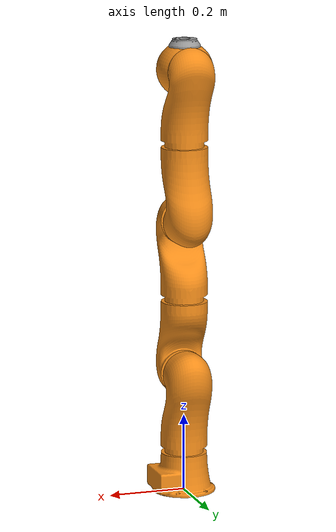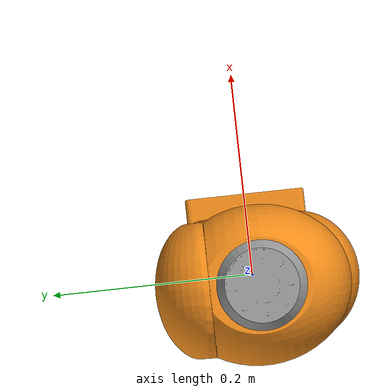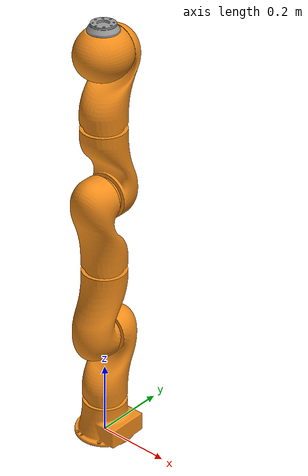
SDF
<sdf version='1.5'>
  <model name='lwr_robot'>
    <link name='lwr_base_link'>
      <pose>0 0 0 0 -0 0</pose>
      <inertial>
        <pose>0 0 0.055 0 -0 0</pose>
        <mass>2</mass>
        <inertia>
          <ixx>0.00381667</ixx>
          <ixy>0</ixy>
          <ixz>0</ixz>
          <iyy>0.0036</iyy>
          <iyz>0</iyz>
          <izz>0.00381667</izz>
        </inertia>
      </inertial>
      <collision name='lwr_base_link_collision'>
        <pose>0 0 0.055 0 -0 -3.14159</pose>
        <geometry>
          <cylinder>
            <length>0.11</length>
            <radius>0.07</radius>
          </cylinder>
        </geometry>
        <surface>
          <contact>
            <ode/>
          </contact>
          <friction>
            <ode/>
          </friction>
        </surface>
      </collision>
      <visual name='lwr_base_link_visual'>
        <pose>0 0 0 0 -0 -3.14159</pose>
        <geometry>
          <mesh>
            <scale>1 1 1</scale>
            <uri>model://lwr_description/meshes/base.STL</uri>
          </mesh>
        </geometry>
        <material>
          <script>
            <name>Gazebo/Orange</name>
            <uri>__default__</uri>
          </script>
        </material>
      </visual>
      <gravity>1</gravity>
      <velocity_decay/>
      <self_collide>0</self_collide>
      <gravity>1</gravity>
    </link>
    <joint name='world_lwr_base_joint' type='revolute'>
      <child>lwr_base_link</child>
      <parent>world</parent>
      <axis>
        <limit>
          <lower>0</lower>
          <upper>0</upper>
        </limit>
        <dynamics>
          <damping>0</damping>
          <friction>0</friction>
          <spring_reference>0</spring_reference>
          <spring_stiffness>0</spring_stiffness>
        </dynamics>
        <use_parent_model_frame>1</use_parent_model_frame>
        <xyz>0 0 1</xyz>
      </axis>
    </joint>
    <link name='lwr_1_link'>
      <pose>0 0 0.11 0 -0 0</pose>
      <inertial>
        <pose>0 -0.06 0.13 0 -0 0</pose>
        <mass>2</mass>
        <inertia>
          <ixx>0.0136667</ixx>
          <ixy>0</ixy>
          <ixz>0</ixz>
          <iyy>0.003</iyy>
          <iyz>0</iyz>
          <izz>0.0118667</izz>
        </inertia>
      </inertial>
      <collision name='lwr_1_link_collision'>
        <pose>0 0 0 0 -0 0</pose>
        <geometry>
          <sphere>
            <radius>0.07</radius>
          </sphere>
        </geometry>
        <surface>
          <contact>
            <ode/>
          </contact>
          <friction>
            <ode/>
          </friction>
        </surface>
      </collision>
      <collision name='lwr_1_link_collision_lwr_1_link_1'>
        <pose>0 0.06 0.2 0 -0 0</pose>
        <geometry>
          <sphere>
            <radius>0.07</radius>
          </sphere>
        </geometry>
        <surface>
          <contact>
            <ode/>
          </contact>
          <friction>
            <ode/>
          </friction>
        </surface>
      </collision>
      <collision name='lwr_1_link_collision_lwr_1_link_2'>
        <pose>0 0.03 0.1 -0.291 0 0</pose>
        <geometry>
          <cylinder>
            <length>0.208</length>
            <radius>0.07</radius>
          </cylinder>
        </geometry>
        <surface>
          <contact>
            <ode/>
          </contact>
          <friction>
            <ode/>
          </friction>
        </surface>
      </collision>
      <visual name='lwr_1_link_visual'>
        <pose>0 0 -0.008 0 -0 -3.14159</pose>
        <geometry>
          <mesh>
            <scale>1 1 1</scale>
            <uri>model://lwr_description/meshes/link_1.STL</uri>
          </mesh>
        </geometry>
        <material>
          <script>
            <name>Gazebo/Orange</name>
            <uri>__default__</uri>
          </script>
        </material>
      </visual>
      <gravity>1</gravity>
      <velocity_decay/>
      <self_collide>0</self_collide>
      <gravity>1</gravity>
    </link>
    <joint name='lwr_0_joint' type='revolute'>
      <child>lwr_1_link</child>
      <parent>lwr_base_link</parent>
      <axis>
        <xyz>0 0 1</xyz>
        <limit>
          <lower>-2.96706</lower>
          <upper>2.96706</upper>
          <effort>176</effort>
          <velocity>1.91986</velocity>
        </limit>
        <dynamics>
          <damping>1</damping>
          <friction>10</friction>
          <spring_reference>0</spring_reference>
          <spring_stiffness>0</spring_stiffness>
        </dynamics>
        <use_parent_model_frame>1</use_parent_model_frame>
      </axis>
    </joint>
    <link name='lwr_2_link'>
      <pose>0 0 0.3105 0 -0 0</pose>
      <inertial>
        <pose>0 0.06 0.07 0 -0 0</pose>
        <mass>2</mass>
        <inertia>
          <ixx>0.0136667</ixx>
          <ixy>0</ixy>
          <ixz>0</ixz>
          <iyy>0.003</iyy>
          <iyz>0</iyz>
          <izz>0.0118667</izz>
        </inertia>
      </inertial>
      <collision name='lwr_2_link_collision'>
        <pose>0 0 0.2 0 -0 0</pose>
        <geometry>
          <sphere>
            <radius>0.07</radius>
          </sphere>
        </geometry>
        <surface>
          <contact>
            <ode/>
          </contact>
          <friction>
            <ode/>
          </friction>
        </surface>
      </collision>
      <collision name='lwr_2_link_collision_lwr_2_link_1'>
        <pose>0 -0.06 0 0 -0 0</pose>
        <geometry>
          <sphere>
            <radius>0.07</radius>
          </sphere>
        </geometry>
        <surface>
          <contact>
            <ode/>
          </contact>
          <friction>
            <ode/>
          </friction>
        </surface>
      </collision>
      <collision name='lwr_2_link_collision_lwr_2_link_2'>
        <pose>0 -0.03 0.1 -0.291 0 0</pose>
        <geometry>
          <cylinder>
            <length>0.208</length>
            <radius>0.07</radius>
          </cylinder>
        </geometry>
        <surface>
          <contact>
            <ode/>
          </contact>
          <friction>
            <ode/>
          </friction>
        </surface>
      </collision>
      <visual name='lwr_2_link_visual'>
        <pose>0 0 0 0 -0 -3.14159</pose>
        <geometry>
          <mesh>
            <scale>1 1 1</scale>
            <uri>model://lwr_description/meshes/link_2.STL</uri>
          </mesh>
        </geometry>
        <material>
          <script>
            <name>Gazebo/Orange</name>
            <uri>__default__</uri>
          </script>
        </material>
      </visual>
      <gravity>1</gravity>
      <velocity_decay/>
      <self_collide>0</self_collide>
      <gravity>1</gravity>
    </link>
    <joint name='lwr_1_joint' type='revolute'>
      <child>lwr_2_link</child>
      <parent>lwr_1_link</parent>
      <axis>
        <xyz>0 -1 0</xyz>
        <limit>
          <lower>-2.0944</lower>
          <upper>2.0944</upper>
          <effort>176</effort>
          <velocity>1.91986</velocity>
        </limit>
        <dynamics>
          <damping>1</damping>
          <friction>10</friction>
          <spring_reference>0</spring_reference>
          <spring_stiffness>0</spring_stiffness>
        </dynamics>
        <use_parent_model_frame>1</use_parent_model_frame>
      </axis>
    </joint>
    <link name='lwr_3_link'>
      <pose>0 0 0.5105 0 -0 0</pose>
      <inertial>
        <pose>0 0.06 0.13 0 -0 0</pose>
        <mass>2</mass>
        <inertia>
          <ixx>0.0136667</ixx>
          <ixy>0</ixy>
          <ixz>0</ixz>
          <iyy>0.003</iyy>
          <iyz>0</iyz>
          <izz>0.0118667</izz>
        </inertia>
      </inertial>
      <collision name='lwr_3_link_collision'>
        <pose>0 0 0 0 -0 0</pose>
        <geometry>
          <sphere>
            <radius>0.07</radius>
          </sphere>
        </geometry>
        <surface>
          <contact>
            <ode/>
          </contact>
          <friction>
            <ode/>
          </friction>
        </surface>
      </collision>
      <collision name='lwr_3_link_collision_lwr_3_link_1'>
        <pose>0 -0.06 0.2 0 -0 0</pose>
        <geometry>
          <sphere>
            <radius>0.07</radius>
          </sphere>
        </geometry>
        <surface>
          <contact>
            <ode/>
          </contact>
          <friction>
            <ode/>
          </friction>
        </surface>
      </collision>
      <collision name='lwr_3_link_collision_lwr_3_link_2'>
        <pose>0 -0.03 0.1 0.291 -0 0</pose>
        <geometry>
          <cylinder>
            <length>0.208</length>
            <radius>0.07</radius>
          </cylinder>
        </geometry>
        <surface>
          <contact>
            <ode/>
          </contact>
          <friction>
            <ode/>
          </friction>
        </surface>
      </collision>
      <visual name='lwr_3_link_visual'>
        <pose>0 0 -0.008 0 -0 -3.14159</pose>
        <geometry>
          <mesh>
            <scale>1 1 1</scale>
            <uri>model://lwr_description/meshes/link_3.STL</uri>
          </mesh>
        </geometry>
        <material>
          <script>
            <name>Gazebo/Orange</name>
            <uri>__default__</uri>
          </script>
        </material>
      </visual>
      <gravity>1</gravity>
      <velocity_decay/>
      <self_collide>0</self_collide>
      <gravity>1</gravity>
    </link>
    <joint name='lwr_2_joint' type='revolute'>
      <child>lwr_3_link</child>
      <parent>lwr_2_link</parent>
      <axis>
        <xyz>0 0 1</xyz>
        <limit>
          <lower>-2.96706</lower>
          <upper>2.96706</upper>
          <effort>100</effort>
          <velocity>2.23402</velocity>
        </limit>
        <dynamics>
          <damping>1</damping>
          <friction>10</friction>
          <spring_reference>0</spring_reference>
          <spring_stiffness>0</spring_stiffness>
        </dynamics>
        <use_parent_model_frame>1</use_parent_model_frame>
      </axis>
    </joint>
    <link name='lwr_4_link'>
      <pose>0 0 0.7105 0 -0 0</pose>
      <inertial>
        <pose>0 -0.06 0.07 0 -0 0</pose>
        <mass>2</mass>
        <inertia>
          <ixx>0.0136667</ixx>
          <ixy>0</ixy>
          <ixz>0</ixz>
          <iyy>0.003</iyy>
          <iyz>0</iyz>
          <izz>0.0118667</izz>
        </inertia>
      </inertial>
      <collision name='lwr_4_link_collision'>
        <pose>0 0 0.2 0 -0 0</pose>
        <geometry>
          <sphere>
            <radius>0.07</radius>
          </sphere>
        </geometry>
        <surface>
          <contact>
            <ode/>
          </contact>
          <friction>
            <ode/>
          </friction>
        </surface>
      </collision>
      <collision name='lwr_4_link_collision_lwr_4_link_1'>
        <pose>0 0.06 0 0 -0 0</pose>
        <geometry>
          <sphere>
            <radius>0.07</radius>
          </sphere>
        </geometry>
        <surface>
          <contact>
            <ode/>
          </contact>
          <friction>
            <ode/>
          </friction>
        </surface>
      </collision>
      <collision name='lwr_4_link_collision_lwr_4_link_2'>
        <pose>0 0.03 0.1 0.291 -0 0</pose>
        <geometry>
          <cylinder>
            <length>0.208</length>
            <radius>0.07</radius>
          </cylinder>
        </geometry>
        <surface>
          <contact>
            <ode/>
          </contact>
          <friction>
            <ode/>
          </friction>
        </surface>
      </collision>
      <visual name='lwr_4_link_visual'>
        <pose>0 0 0 0 -0 -3.14159</pose>
        <geometry>
          <mesh>
            <scale>1 1 1</scale>
            <uri>model://lwr_description/meshes/link_4.STL</uri>
          </mesh>
        </geometry>
        <material>
          <script>
            <name>Gazebo/Orange</name>
            <uri>__default__</uri>
          </script>
        </material>
      </visual>
      <gravity>1</gravity>
      <velocity_decay/>
      <self_collide>0</self_collide>
      <gravity>1</gravity>
    </link>
    <joint name='lwr_3_joint' type='revolute'>
      <child>lwr_4_link</child>
      <parent>lwr_3_link</parent>
      <axis>
        <xyz>0 1 0</xyz>
        <limit>
          <lower>-2.0944</lower>
          <upper>2.0944</upper>
          <effort>100</effort>
          <velocity>2.23402</velocity>
        </limit>
        <dynamics>
          <damping>1</damping>
          <friction>10</friction>
          <spring_reference>0</spring_reference>
          <spring_stiffness>0</spring_stiffness>
        </dynamics>
        <use_parent_model_frame>1</use_parent_model_frame>
      </axis>
    </joint>
    <link name='lwr_5_link'>
      <pose>0 0 0.9105 0 -0 0</pose>
      <inertial>
        <pose>0 0 0.124 0 -0 0</pose>
        <mass>2</mass>
        <inertia>
          <ixx>0.0126507</ixx>
          <ixy>0</ixy>
          <ixz>0</ixz>
          <iyy>0.003</iyy>
          <iyz>0</iyz>
          <izz>0.0108507</izz>
        </inertia>
      </inertial>
      <collision name='lwr_5_link_collision'>
        <pose>0 0 0 0 -0 0</pose>
        <geometry>
          <sphere>
            <radius>0.07</radius>
          </sphere>
        </geometry>
        <surface>
          <contact>
            <ode/>
          </contact>
          <friction>
            <ode/>
          </friction>
        </surface>
      </collision>
      <collision name='lwr_5_link_collision_lwr_5_link_1'>
        <pose>0 0.04 0.19 0 -0 0</pose>
        <geometry>
          <sphere>
            <radius>0.07</radius>
          </sphere>
        </geometry>
        <surface>
          <contact>
            <ode/>
          </contact>
          <friction>
            <ode/>
          </friction>
        </surface>
      </collision>
      <collision name='lwr_5_link_collision_lwr_5_link_2'>
        <pose>0 0.02 0.095 -0.207 0 0</pose>
        <geometry>
          <cylinder>
            <length>0.198</length>
            <radius>0.07</radius>
          </cylinder>
        </geometry>
        <surface>
          <contact>
            <ode/>
          </contact>
          <friction>
            <ode/>
          </friction>
        </surface>
      </collision>
      <visual name='lwr_5_link_visual'>
        <pose>0 0 -0.008 0 -0 -3.14159</pose>
        <geometry>
          <mesh>
            <scale>1 1 1</scale>
            <uri>model://lwr_description/meshes/link_5.STL</uri>
          </mesh>
        </geometry>
        <material>
          <script>
            <name>Gazebo/Orange</name>
            <uri>__default__</uri>
          </script>
        </material>
      </visual>
      <gravity>1</gravity>
      <velocity_decay/>
      <self_collide>0</self_collide>
      <gravity>1</gravity>
    </link>
    <joint name='lwr_4_joint' type='revolute'>
      <child>lwr_5_link</child>
      <parent>lwr_4_link</parent>
      <axis>
        <xyz>0 0 1</xyz>
        <limit>
          <lower>-2.96706</lower>
          <upper>2.96706</upper>
          <effort>100</effort>
          <velocity>3.56047</velocity>
        </limit>
        <dynamics>
          <damping>1</damping>
          <friction>10</friction>
          <spring_reference>0</spring_reference>
          <spring_stiffness>0</spring_stiffness>
        </dynamics>
        <use_parent_model_frame>1</use_parent_model_frame>
      </axis>
    </joint>
    <link name='lwr_6_link'>
      <pose>0 0 1.1005 0 -0 0</pose>
      <inertial>
        <pose>0 0 0.0625 0 -0 0</pose>
        <mass>0.2</mass>
        <inertia>
          <ixx>0.000520833</ixx>
          <ixy>0</ixy>
          <ixz>0</ixz>
          <iyy>0.000520833</iyy>
          <iyz>0</iyz>
          <izz>0.000520833</izz>
        </inertia>
      </inertial>
      <collision name='lwr_6_link_collision'>
        <pose>0 0 0 0 -0 -3.14159</pose>
        <geometry>
          <mesh>
            <scale>1 1 1</scale>
            <uri>model://lwr_description/meshes/convex/arm_wrist_convex.stl</uri>
          </mesh>
        </geometry>
        <surface>
          <contact>
            <ode/>
          </contact>
          <friction>
            <ode/>
          </friction>
        </surface>
      </collision>
      <visual name='lwr_6_link_visual'>
        <pose>0 0 0 0 -0 -3.14159</pose>
        <geometry>
          <mesh>
            <scale>1 1 1</scale>
            <uri>model://lwr_description/meshes/link_6.STL</uri>
          </mesh>
        </geometry>
        <material>
          <script>
            <name>Gazebo/Orange</name>
            <uri>__default__</uri>
          </script>
        </material>
      </visual>
      <gravity>1</gravity>
      <velocity_decay/>
      <self_collide>0</self_collide>
      <gravity>1</gravity>
    </link>
    <joint name='lwr_5_joint' type='revolute'>
      <child>lwr_6_link</child>
      <parent>lwr_5_link</parent>
      <axis>
        <xyz>0 -1 0</xyz>
        <limit>
          <lower>-2.0944</lower>
          <upper>2.0944</upper>
          <effort>38</effort>
          <velocity>3.21141</velocity>
        </limit>
        <dynamics>
          <damping>1</damping>
          <friction>10</friction>
          <spring_reference>0</spring_reference>
          <spring_stiffness>0</spring_stiffness>
        </dynamics>
        <use_parent_model_frame>1</use_parent_model_frame>
      </axis>
    </joint>
    <link name='lwr_7_link'>
      <pose>0 0 1.1785 0 -0 0</pose>
      <inertial>
        <pose>0 0 0 0 -0 0</pose>
        <mass>0.2</mass>
        <inertia>
          <ixx>0.0333333</ixx>
          <ixy>0</ixy>
          <ixz>0</ixz>
          <iyy>0.0333333</iyy>
          <iyz>0</iyz>
          <izz>0.0333333</izz>
        </inertia>
      </inertial>
      <collision name='lwr_7_link_collision'>
        <pose>0 0 0 0 -0 -3.14159</pose>
        <geometry>
          <cylinder>
            <length>0.05</length>
            <radius>0.04</radius>
          </cylinder>
        </geometry>
        <surface>
          <contact>
            <ode/>
          </contact>
          <friction>
            <ode/>
          </friction>
        </surface>
      </collision>
      <visual name='lwr_7_link_visual'>
        <pose>0 0 0 0 -0 -3.14159</pose>
        <geometry>
          <mesh>
            <scale>1 1 1</scale>
            <uri>model://lwr_description/meshes/link_7.STL</uri>
          </mesh>
        </geometry>
        <material>
          <script>
            <name>Gazebo/Grey</name>
            <uri>__default__</uri>
          </script>
        </material>
      </visual>
      <gravity>1</gravity>
      <velocity_decay/>
      <self_collide>0</self_collide>
      <gravity>1</gravity>
    </link>
    <joint name='lwr_6_joint' type='revolute'>
      <child>lwr_7_link</child>
      <parent>lwr_6_link</parent>
      <axis>
        <xyz>0 0 1</xyz>
        <limit>
          <lower>-2.96706</lower>
          <upper>2.96706</upper>
          <effort>38</effort>
          <velocity>3.21141</velocity>
        </limit>
        <dynamics>
          <damping>1</damping>
          <friction>10</friction>
          <spring_reference>0</spring_reference>
          <spring_stiffness>0</spring_stiffness>
        </dynamics>
        <use_parent_model_frame>1</use_parent_model_frame>
      </axis>
    </joint>
    <plugin name='lwr_hw' filename='liblwr_hw_sim_plugin.so'>
      <robotNamespace>lwr</robotNamespace>
      <robotSimType>lwr_hw/DefaultLWRHWsim</robotSimType>
    </plugin>
    <static>0</static>
  </model>
</sdf>
